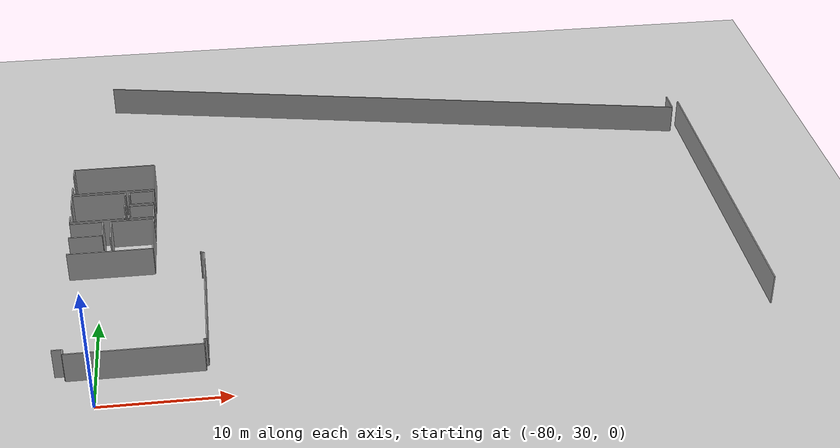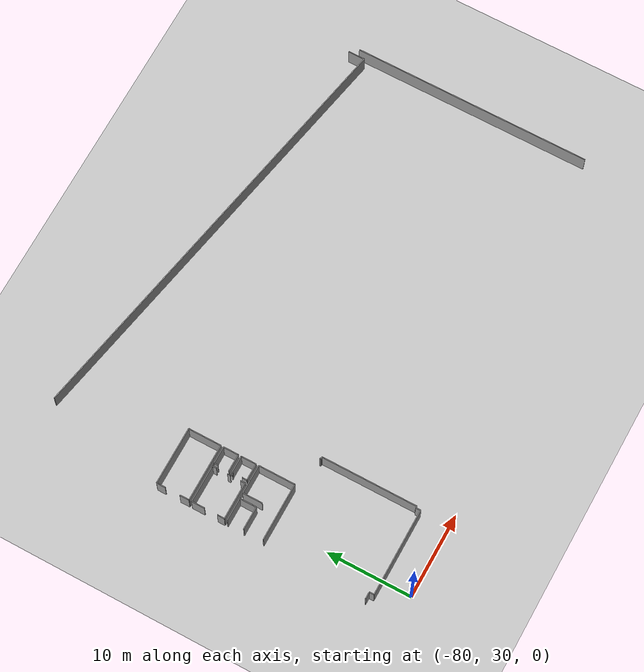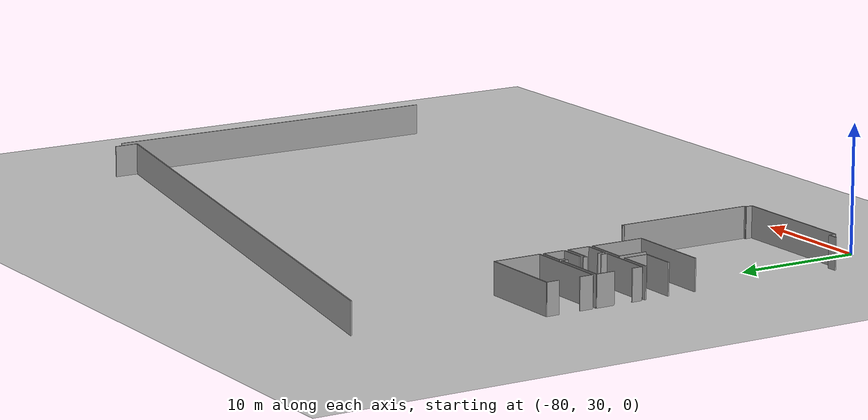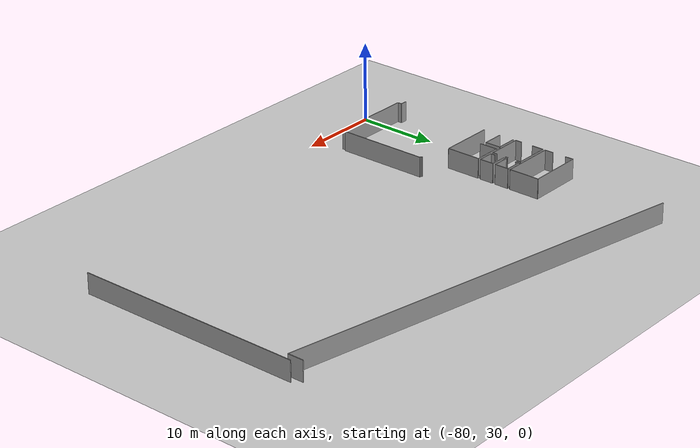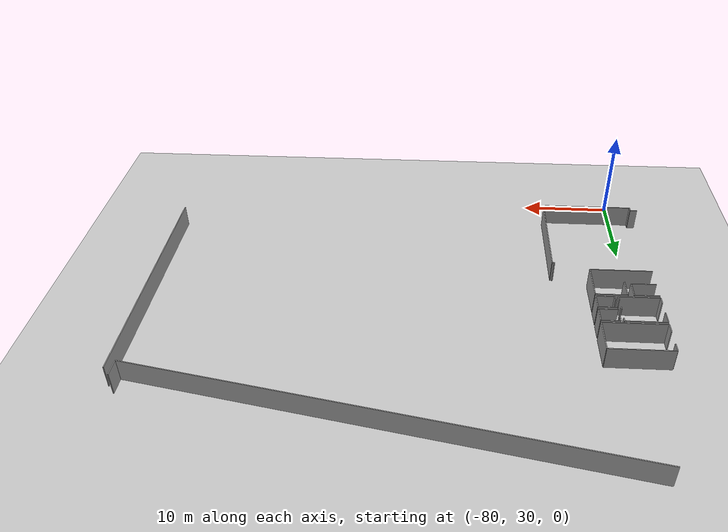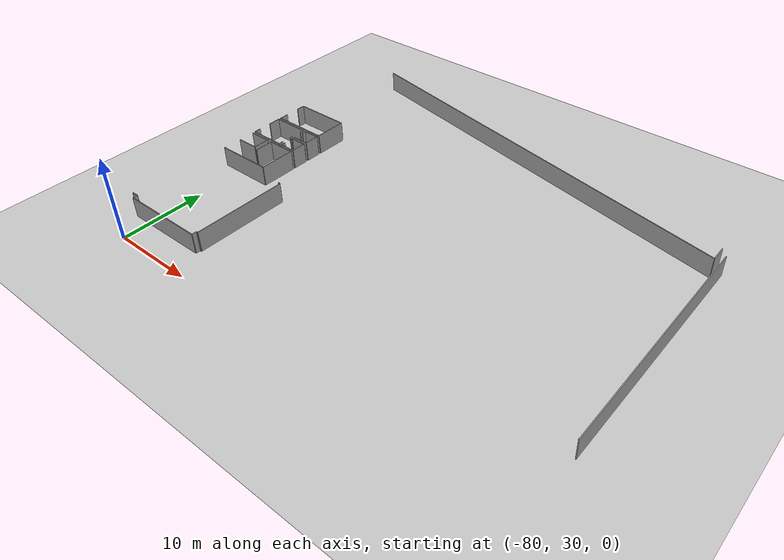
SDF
<sdf version="1.6">
 <world name="default">
  <model name="ground_plane">
   <static>1</static>
   <link name="link">
    <collision name="collision">
     <geometry><plane><normal>0 0 1</normal><size>100 100</size></plane></geometry>
     <surface><friction><ode><mu>100</mu><mu2>50</mu2></ode></friction></surface>
    </collision>
    <visual name="visual">
     <cast_shadows>0</cast_shadows>
     <geometry><plane><normal>0 0 1</normal><size>100 100</size></plane></geometry>
     <material>
      <script><uri>file://media/materials/scripts/gazebo.material</uri><name>Gazebo/Grey</name></script>
     </material>
    </visual>
   </link>
  </model>
  <model name="0510045925_40">
   <static>1</static>
   <link name="Wall_492">
    <collision name="Wall_492_Collision">
     <geometry><box><size>1.94081368493 0.1 2.5</size></box></geometry>
     <pose>0.970406842466 0 1.25 0 0 0</pose>
    </collision>
    <visual name="Wall_492_Visual">
     <pose>0.970406842466 0 1.25 0 0 0</pose>
     <geometry><box><size>1.94081368493 0.1 2.5</size></box></geometry>
     <material>
      <script><uri>file://media/materials/scripts/gazebo.material</uri><name>Gazebo/Grey</name></script>
      <ambient>1 1 1 1</ambient>
     </material>
    </visual>
    <pose>105.108804345 -36.0411410878 0 0 0 -1.57079632679</pose>
   </link>
   <link name="Wall_493">
    <collision name="Wall_493_Collision">
     <geometry><box><size>51.6966576645 0.1 2.5</size></box></geometry>
     <pose>25.8483288323 0 1.25 0 0 0</pose>
    </collision>
    <visual name="Wall_493_Visual">
     <pose>25.8483288323 0 1.25 0 0 0</pose>
     <geometry><box><size>51.6966576645 0.1 2.5</size></box></geometry>
     <material>
      <script><uri>file://media/materials/scripts/gazebo.material</uri><name>Gazebo/Grey</name></script>
      <ambient>1 1 1 1</ambient>
     </material>
    </visual>
    <pose>105.108804345 -37.9819547727 0 0 0 2.94925575427</pose>
   </link>
   <link name="Wall_688">
    <collision name="Wall_688_Collision">
     <geometry><box><size>2.67911981929 0.1 2.5</size></box></geometry>
     <pose>1.33955990965 0 1.25 0 0 0</pose>
    </collision>
    <visual name="Wall_688_Visual">
     <pose>1.33955990965 0 1.25 0 0 0</pose>
     <geometry><box><size>2.67911981929 0.1 2.5</size></box></geometry>
     <material>
      <script><uri>file://media/materials/scripts/gazebo.material</uri><name>Gazebo/Grey</name></script>
      <ambient>1 1 1 1</ambient>
     </material>
    </visual>
    <pose>51.448491155 -50.7052359077 0 0 0 0.0</pose>
   </link>
   <link name="Wall_689">
    <collision name="Wall_689_Collision">
     <geometry><box><size>1.96873175808 0.1 2.5</size></box></geometry>
     <pose>0.984365879039 0 1.25 0 0 0</pose>
    </collision>
    <visual name="Wall_689_Visual">
     <pose>0.984365879039 0 1.25 0 0 0</pose>
     <geometry><box><size>1.96873175808 0.1 2.5</size></box></geometry>
     <material>
      <script><uri>file://media/materials/scripts/gazebo.material</uri><name>Gazebo/Grey</name></script>
      <ambient>1 1 1 1</ambient>
     </material>
    </visual>
    <pose>54.1276109743 -50.7052359077 0 0 0 -1.57079632679</pose>
   </link>
   <link name="Wall_690">
    <collision name="Wall_690_Collision">
     <geometry><box><size>2.68622623791 0.1 2.5</size></box></geometry>
     <pose>1.34311311896 0 1.25 0 0 0</pose>
    </collision>
    <visual name="Wall_690_Visual">
     <pose>1.34311311896 0 1.25 0 0 0</pose>
     <geometry><box><size>2.68622623791 0.1 2.5</size></box></geometry>
     <material>
      <script><uri>file://media/materials/scripts/gazebo.material</uri><name>Gazebo/Grey</name></script>
      <ambient>1 1 1 1</ambient>
     </material>
    </visual>
    <pose>54.1276109743 -52.6739676658 0 0 0 3.14159265359</pose>
   </link>
   <link name="Wall_693">
    <collision name="Wall_693_Collision">
     <geometry><box><size>3.40194411309 0.1 2.5</size></box></geometry>
     <pose>1.70097205655 0 1.25 0 0 0</pose>
    </collision>
    <visual name="Wall_693_Visual">
     <pose>1.70097205655 0 1.25 0 0 0</pose>
     <geometry><box><size>3.40194411309 0.1 2.5</size></box></geometry>
     <material>
      <script><uri>file://media/materials/scripts/gazebo.material</uri><name>Gazebo/Grey</name></script>
      <ambient>1 1 1 1</ambient>
     </material>
    </visual>
    <pose>54.7900307099 -50.6935610771 0 0 0 0.0</pose>
   </link>
   <link name="Wall_694">
    <collision name="Wall_694_Collision">
     <geometry><box><size>4.30928149032 0.1 2.5</size></box></geometry>
     <pose>2.15464074516 0 1.25 0 0 0</pose>
    </collision>
    <visual name="Wall_694_Visual">
     <pose>2.15464074516 0 1.25 0 0 0</pose>
     <geometry><box><size>4.30928149032 0.1 2.5</size></box></geometry>
     <material>
      <script><uri>file://media/materials/scripts/gazebo.material</uri><name>Gazebo/Grey</name></script>
      <ambient>1 1 1 1</ambient>
     </material>
    </visual>
    <pose>58.191974823 -50.6935610771 0 0 0 -1.57079632679</pose>
   </link>
   <link name="Wall_695">
    <collision name="Wall_695_Collision">
     <geometry><box><size>6.78358417299 0.1 2.5</size></box></geometry>
     <pose>3.3917920865 0 1.25 0 0 0</pose>
    </collision>
    <visual name="Wall_695_Visual">
     <pose>3.3917920865 0 1.25 0 0 0</pose>
     <geometry><box><size>6.78358417299 0.1 2.5</size></box></geometry>
     <material>
      <script><uri>file://media/materials/scripts/gazebo.material</uri><name>Gazebo/Grey</name></script>
      <ambient>1 1 1 1</ambient>
     </material>
    </visual>
    <pose>58.191974823 -55.0028425674 0 0 0 3.14159265359</pose>
   </link>
   <link name="Wall_697">
    <collision name="Wall_697_Collision">
     <geometry><box><size>2.3182169548 0.1 2.5</size></box></geometry>
     <pose>1.1591084774 0 1.25 0 0 0</pose>
    </collision>
    <visual name="Wall_697_Visual">
     <pose>1.1591084774 0 1.25 0 0 0</pose>
     <geometry><box><size>2.3182169548 0.1 2.5</size></box></geometry>
     <material>
      <script><uri>file://media/materials/scripts/gazebo.material</uri><name>Gazebo/Grey</name></script>
      <ambient>1 1 1 1</ambient>
     </material>
    </visual>
    <pose>54.7928225172 -53.0117763509 0 0 0 1.57200061787</pose>
   </link>
   <link name="Wall_698">
    <collision name="Wall_698_Collision">
     <geometry><box><size>2.0106088678 0.1 2.5</size></box></geometry>
     <pose>1.0053044339 0 1.25 0 0 0</pose>
    </collision>
    <visual name="Wall_698_Visual">
     <pose>1.0053044339 0 1.25 0 0 0</pose>
     <geometry><box><size>2.0106088678 0.1 2.5</size></box></geometry>
     <material>
      <script><uri>file://media/materials/scripts/gazebo.material</uri><name>Gazebo/Grey</name></script>
      <ambient>1 1 1 1</ambient>
     </material>
    </visual>
    <pose>56.1912641811 -46.459912185 0 0 0 0.0</pose>
   </link>
   <link name="Wall_699">
    <collision name="Wall_699_Collision">
     <geometry><box><size>1.781680668 0.1 2.5</size></box></geometry>
     <pose>0.890840334002 0 1.25 0 0 0</pose>
    </collision>
    <visual name="Wall_699_Visual">
     <pose>0.890840334002 0 1.25 0 0 0</pose>
     <geometry><box><size>1.781680668 0.1 2.5</size></box></geometry>
     <material>
      <script><uri>file://media/materials/scripts/gazebo.material</uri><name>Gazebo/Grey</name></script>
      <ambient>1 1 1 1</ambient>
     </material>
    </visual>
    <pose>58.2018730489 -46.459912185 0 0 0 -1.57079632679</pose>
   </link>
   <link name="Wall_700">
    <collision name="Wall_700_Collision">
     <geometry><box><size>2.02050709373 0.1 2.5</size></box></geometry>
     <pose>1.01025354686 0 1.25 0 0 0</pose>
    </collision>
    <visual name="Wall_700_Visual">
     <pose>1.01025354686 0 1.25 0 0 0</pose>
     <geometry><box><size>2.02050709373 0.1 2.5</size></box></geometry>
     <material>
      <script><uri>file://media/materials/scripts/gazebo.material</uri><name>Gazebo/Grey</name></script>
      <ambient>1 1 1 1</ambient>
     </material>
    </visual>
    <pose>58.2018730489 -48.241592853 0 0 0 3.14159265359</pose>
   </link>
   <link name="Wall_701">
    <collision name="Wall_701_Collision">
     <geometry><box><size>0.474710449044 0.1 2.5</size></box></geometry>
     <pose>0.237355224522 0 1.25 0 0 0</pose>
    </collision>
    <visual name="Wall_701_Visual">
     <pose>0.237355224522 0 1.25 0 0 0</pose>
     <geometry><box><size>0.474710449044 0.1 2.5</size></box></geometry>
     <material>
      <script><uri>file://media/materials/scripts/gazebo.material</uri><name>Gazebo/Grey</name></script>
      <ambient>1 1 1 1</ambient>
     </material>
    </visual>
    <pose>56.1813659552 -46.9345194284 0 0 0 1.5499437348</pose>
   </link>
   <link name="Wall_702">
    <collision name="Wall_702_Collision">
     <geometry><box><size>2.0004568412 0.1 2.5</size></box></geometry>
     <pose>1.0002284206 0 1.25 0 0 0</pose>
    </collision>
    <visual name="Wall_702_Visual">
     <pose>1.0002284206 0 1.25 0 0 0</pose>
     <geometry><box><size>2.0004568412 0.1 2.5</size></box></geometry>
     <material>
      <script><uri>file://media/materials/scripts/gazebo.material</uri><name>Gazebo/Grey</name></script>
      <ambient>1 1 1 1</ambient>
     </material>
    </visual>
    <pose>56.1960863937 -48.5943757773 0 0 0 0.0</pose>
   </link>
   <link name="Wall_703">
    <collision name="Wall_703_Collision">
     <geometry><box><size>1.78447247532 0.1 2.5</size></box></geometry>
     <pose>0.892236237659 0 1.25 0 0 0</pose>
    </collision>
    <visual name="Wall_703_Visual">
     <pose>0.892236237659 0 1.25 0 0 0</pose>
     <geometry><box><size>1.78447247532 0.1 2.5</size></box></geometry>
     <material>
      <script><uri>file://media/materials/scripts/gazebo.material</uri><name>Gazebo/Grey</name></script>
      <ambient>1 1 1 1</ambient>
     </material>
    </visual>
    <pose>58.1965432349 -48.5943757773 0 0 0 -1.57079632679</pose>
   </link>
   <link name="Wall_704">
    <collision name="Wall_704_Collision">
     <geometry><box><size>1.9852288013 0.1 2.5</size></box></geometry>
     <pose>0.99261440065 0 1.25 0 0 0</pose>
    </collision>
    <visual name="Wall_704_Visual">
     <pose>0.99261440065 0 1.25 0 0 0</pose>
     <geometry><box><size>1.9852288013 0.1 2.5</size></box></geometry>
     <material>
      <script><uri>file://media/materials/scripts/gazebo.material</uri><name>Gazebo/Grey</name></script>
      <ambient>1 1 1 1</ambient>
     </material>
    </visual>
    <pose>58.1965432349 -50.3788482526 0 0 0 3.14159265359</pose>
   </link>
   <link name="Wall_705">
    <collision name="Wall_705_Collision">
     <geometry><box><size>0.574858506129 0.1 2.5</size></box></geometry>
     <pose>0.287429253065 0 1.25 0 0 0</pose>
    </collision>
    <visual name="Wall_705_Visual">
     <pose>0.287429253065 0 1.25 0 0 0</pose>
     <geometry><box><size>0.574858506129 0.1 2.5</size></box></geometry>
     <material>
      <script><uri>file://media/materials/scripts/gazebo.material</uri><name>Gazebo/Grey</name></script>
      <ambient>1 1 1 1</ambient>
     </material>
    </visual>
    <pose>56.2113144336 -50.3788482526 0 0 0 1.57079632679</pose>
   </link>
   <link name="Wall_706">
    <collision name="Wall_706_Collision">
     <geometry><box><size>0.10290701551 0.1 2.5</size></box></geometry>
     <pose>0.0514535077551 0 1.25 0 0 0</pose>
    </collision>
    <visual name="Wall_706_Visual">
     <pose>0.0514535077551 0 1.25 0 0 0</pose>
     <geometry><box><size>0.10290701551 0.1 2.5</size></box></geometry>
     <material>
      <script><uri>file://media/materials/scripts/gazebo.material</uri><name>Gazebo/Grey</name></script>
      <ambient>1 1 1 1</ambient>
     </material>
    </visual>
    <pose>56.2113144336 -48.6961498439 0 0 0 1.71932042076</pose>
   </link>
   <link name="Wall_707">
    <collision name="Wall_707_Collision">
     <geometry><box><size>4.38948250044 0.1 2.5</size></box></geometry>
     <pose>2.19474125022 0 1.25 0 0 0</pose>
    </collision>
    <visual name="Wall_707_Visual">
     <pose>2.19474125022 0 1.25 0 0 0</pose>
     <geometry><box><size>4.38948250044 0.1 2.5</size></box></geometry>
     <material>
      <script><uri>file://media/materials/scripts/gazebo.material</uri><name>Gazebo/Grey</name></script>
      <ambient>1 1 1 1</ambient>
     </material>
    </visual>
    <pose>51.4482373544 -46.4687952082 0 0 0 0.0</pose>
   </link>
   <link name="Wall_708">
    <collision name="Wall_708_Collision">
     <geometry><box><size>0.494911296668 0.1 2.5</size></box></geometry>
     <pose>0.247455648334 0 1.25 0 0 0</pose>
    </collision>
    <visual name="Wall_708_Visual">
     <pose>0.247455648334 0 1.25 0 0 0</pose>
     <geometry><box><size>0.494911296668 0.1 2.5</size></box></geometry>
     <material>
      <script><uri>file://media/materials/scripts/gazebo.material</uri><name>Gazebo/Grey</name></script>
      <ambient>1 1 1 1</ambient>
     </material>
    </visual>
    <pose>55.8377198548 -46.4687952082 0 0 0 -1.57079632679</pose>
   </link>
   <link name="Wall_709">
    <collision name="Wall_709_Collision">
     <geometry><box><size>0.351513920966 0.1 2.5</size></box></geometry>
     <pose>0.175756960483 0 1.25 0 0 0</pose>
    </collision>
    <visual name="Wall_709_Visual">
     <pose>0.175756960483 0 1.25 0 0 0</pose>
     <geometry><box><size>0.351513920966 0.1 2.5</size></box></geometry>
     <material>
      <script><uri>file://media/materials/scripts/gazebo.material</uri><name>Gazebo/Grey</name></script>
      <ambient>1 1 1 1</ambient>
     </material>
    </visual>
    <pose>55.8377198548 -48.280170554 0 0 0 -1.57079632679</pose>
   </link>
   <link name="Wall_710">
    <collision name="Wall_710_Collision">
     <geometry><box><size>0.537803609045 0.1 2.5</size></box></geometry>
     <pose>0.268901804523 0 1.25 0 0 0</pose>
    </collision>
    <visual name="Wall_710_Visual">
     <pose>0.268901804523 0 1.25 0 0 0</pose>
     <geometry><box><size>0.537803609045 0.1 2.5</size></box></geometry>
     <material>
      <script><uri>file://media/materials/scripts/gazebo.material</uri><name>Gazebo/Grey</name></script>
      <ambient>1 1 1 1</ambient>
     </material>
    </visual>
    <pose>55.8377198548 -49.8334306236 0 0 0 -1.57079632679</pose>
   </link>
   <link name="Wall_711">
    <collision name="Wall_711_Collision">
     <geometry><box><size>4.38034567651 0.1 2.5</size></box></geometry>
     <pose>2.19017283825 0 1.25 0 0 0</pose>
    </collision>
    <visual name="Wall_711_Visual">
     <pose>2.19017283825 0 1.25 0 0 0</pose>
     <geometry><box><size>4.38034567651 0.1 2.5</size></box></geometry>
     <material>
      <script><uri>file://media/materials/scripts/gazebo.material</uri><name>Gazebo/Grey</name></script>
      <ambient>1 1 1 1</ambient>
     </material>
    </visual>
    <pose>55.8377198548 -50.3712342326 0 0 0 3.14159265359</pose>
   </link>
   <link name="Wall_712">
    <collision name="Wall_712_Collision">
     <geometry><box><size>0.840334001675 0.1 2.5</size></box></geometry>
     <pose>0.420167000838 0 1.25 0 0 0</pose>
    </collision>
    <visual name="Wall_712_Visual">
     <pose>0.420167000838 0 1.25 0 0 0</pose>
     <geometry><box><size>0.840334001675 0.1 2.5</size></box></geometry>
     <material>
      <script><uri>file://media/materials/scripts/gazebo.material</uri><name>Gazebo/Grey</name></script>
      <ambient>1 1 1 1</ambient>
     </material>
    </visual>
    <pose>51.4573741783 -50.3712342326 0 0 0 1.57079632679</pose>
   </link>
   <link name="Wall_713">
    <collision name="Wall_713_Collision">
     <geometry><box><size>1.52105482733 0.1 2.5</size></box></geometry>
     <pose>0.760527413666 0 1.25 0 0 0</pose>
    </collision>
    <visual name="Wall_713_Visual">
     <pose>0.760527413666 0 1.25 0 0 0</pose>
     <geometry><box><size>1.52105482733 0.1 2.5</size></box></geometry>
     <material>
      <script><uri>file://media/materials/scripts/gazebo.material</uri><name>Gazebo/Grey</name></script>
      <ambient>1 1 1 1</ambient>
     </material>
    </visual>
    <pose>51.4573741783 -47.9898225933 0 0 0 1.57680326272</pose>
   </link>
   <link name="Wall_714">
    <collision name="Wall_714_Collision">
     <geometry><box><size>1.09921067993 0.1 2.5</size></box></geometry>
     <pose>0.549605339966 0 1.25 0 0 0</pose>
    </collision>
    <visual name="Wall_714_Visual">
     <pose>0.549605339966 0 1.25 0 0 0</pose>
     <geometry><box><size>1.09921067993 0.1 2.5</size></box></geometry>
     <material>
      <script><uri>file://media/materials/scripts/gazebo.material</uri><name>Gazebo/Grey</name></script>
      <ambient>1 1 1 1</ambient>
     </material>
    </visual>
    <pose>51.448491155 -46.1487525697 0 0 0 1.57079632679</pose>
   </link>
   <link name="Wall_715">
    <collision name="Wall_715_Collision">
     <geometry><box><size>1.039313723 0.1 2.5</size></box></geometry>
     <pose>0.519656861501 0 1.25 0 0 0</pose>
    </collision>
    <visual name="Wall_715_Visual">
     <pose>0.519656861501 0 1.25 0 0 0</pose>
     <geometry><box><size>1.039313723 0.1 2.5</size></box></geometry>
     <material>
      <script><uri>file://media/materials/scripts/gazebo.material</uri><name>Gazebo/Grey</name></script>
      <ambient>1 1 1 1</ambient>
     </material>
    </visual>
    <pose>51.448491155 -43.2957792949 0 0 0 1.57079632679</pose>
   </link>
   <link name="Wall_716">
    <collision name="Wall_716_Collision">
     <geometry><box><size>6.76835613309 0.1 2.5</size></box></geometry>
     <pose>3.38417806655 0 1.25 0 0 0</pose>
    </collision>
    <visual name="Wall_716_Visual">
     <pose>3.38417806655 0 1.25 0 0 0</pose>
     <geometry><box><size>6.76835613309 0.1 2.5</size></box></geometry>
     <material>
      <script><uri>file://media/materials/scripts/gazebo.material</uri><name>Gazebo/Grey</name></script>
      <ambient>1 1 1 1</ambient>
     </material>
    </visual>
    <pose>51.448491155 -42.2564655719 0 0 0 0.0</pose>
   </link>
   <link name="Wall_717">
    <collision name="Wall_717_Collision">
     <geometry><box><size>3.88949519048 0.1 2.5</size></box></geometry>
     <pose>1.94474759524 0 1.25 0 0 0</pose>
    </collision>
    <visual name="Wall_717_Visual">
     <pose>1.94474759524 0 1.25 0 0 0</pose>
     <geometry><box><size>3.88949519048 0.1 2.5</size></box></geometry>
     <material>
      <script><uri>file://media/materials/scripts/gazebo.material</uri><name>Gazebo/Grey</name></script>
      <ambient>1 1 1 1</ambient>
     </material>
    </visual>
    <pose>58.2168472881 -42.2564655719 0 0 0 -1.57079632679</pose>
   </link>
   <link name="Wall_718">
    <collision name="Wall_718_Collision">
     <geometry><box><size>6.76835670887 0.1 2.5</size></box></geometry>
     <pose>3.38417835444 0 1.25 0 0 0</pose>
    </collision>
    <visual name="Wall_718_Visual">
     <pose>3.38417835444 0 1.25 0 0 0</pose>
     <geometry><box><size>6.76835670887 0.1 2.5</size></box></geometry>
     <material>
      <script><uri>file://media/materials/scripts/gazebo.material</uri><name>Gazebo/Grey</name></script>
      <ambient>1 1 1 1</ambient>
     </material>
    </visual>
    <pose>58.2168472881 -46.1459607624 0 0 0 -3.14118017424</pose>
   </link>
   <link name="Wall_776">
    <collision name="Wall_776_Collision">
     <geometry><box><size>0.15101139565 0.1 2.5</size></box></geometry>
     <pose>0.0755056978249 0 1.25 0 0 0</pose>
    </collision>
    <visual name="Wall_776_Visual">
     <pose>0.0755056978249 0 1.25 0 0 0</pose>
     <geometry><box><size>0.15101139565 0.1 2.5</size></box></geometry>
     <material>
      <script><uri>file://media/materials/scripts/gazebo.material</uri><name>Gazebo/Grey</name></script>
      <ambient>1 1 1 1</ambient>
     </material>
    </visual>
    <pose>61.953046877 -55.8992665161 0 0 0 -1.57079632679</pose>
   </link>
   <link name="Wall_777">
    <collision name="Wall_777_Collision">
     <geometry><box><size>0.233242811096 0.1 2.5</size></box></geometry>
     <pose>0.116621405548 0 1.25 0 0 0</pose>
    </collision>
    <visual name="Wall_777_Visual">
     <pose>0.116621405548 0 1.25 0 0 0</pose>
     <geometry><box><size>0.233242811096 0.1 2.5</size></box></geometry>
     <material>
      <script><uri>file://media/materials/scripts/gazebo.material</uri><name>Gazebo/Grey</name></script>
      <ambient>1 1 1 1</ambient>
     </material>
    </visual>
    <pose>61.953046877 -56.0502779117 0 0 0 0.0</pose>
   </link>
   <link name="Wall_778">
    <collision name="Wall_778_Collision">
     <geometry><box><size>11.2149437832 0.1 2.5</size></box></geometry>
     <pose>5.60747189158 0 1.25 0 0 0</pose>
    </collision>
    <visual name="Wall_778_Visual">
     <pose>5.60747189158 0 1.25 0 0 0</pose>
     <geometry><box><size>11.2149437832 0.1 2.5</size></box></geometry>
     <material>
      <script><uri>file://media/materials/scripts/gazebo.material</uri><name>Gazebo/Grey</name></script>
      <ambient>1 1 1 1</ambient>
     </material>
    </visual>
    <pose>62.1862896881 -56.0502779117 0 0 0 -1.57079632679</pose>
   </link>
   <link name="Wall_779">
    <collision name="Wall_779_Collision">
     <geometry><box><size>0.199233521992 0.1 2.5</size></box></geometry>
     <pose>0.0996167609959 0 1.25 0 0 0</pose>
    </collision>
    <visual name="Wall_779_Visual">
     <pose>0.0996167609959 0 1.25 0 0 0</pose>
     <geometry><box><size>0.199233521992 0.1 2.5</size></box></geometry>
     <material>
      <script><uri>file://media/materials/scripts/gazebo.material</uri><name>Gazebo/Grey</name></script>
      <ambient>1 1 1 1</ambient>
     </material>
    </visual>
    <pose>62.1862896881 -67.2652216949 0 0 0 3.14159265359</pose>
   </link>
   <link name="Wall_780">
    <collision name="Wall_780_Collision">
     <geometry><box><size>0.564452678866 0.1 2.5</size></box></geometry>
     <pose>0.282226339433 0 1.25 0 0 0</pose>
    </collision>
    <visual name="Wall_780_Visual">
     <pose>0.282226339433 0 1.25 0 0 0</pose>
     <geometry><box><size>0.564452678866 0.1 2.5</size></box></geometry>
     <material>
      <script><uri>file://media/materials/scripts/gazebo.material</uri><name>Gazebo/Grey</name></script>
      <ambient>1 1 1 1</ambient>
     </material>
    </visual>
    <pose>61.9870561661 -67.2652216949 0 0 0 -1.57079632679</pose>
   </link>
   <link name="Wall_781">
    <collision name="Wall_781_Collision">
     <geometry><box><size>10.2345118144 0.1 2.5</size></box></geometry>
     <pose>5.11725590721 0 1.25 0 0 0</pose>
    </collision>
    <visual name="Wall_781_Visual">
     <pose>5.11725590721 0 1.25 0 0 0</pose>
     <geometry><box><size>10.2345118144 0.1 2.5</size></box></geometry>
     <material>
      <script><uri>file://media/materials/scripts/gazebo.material</uri><name>Gazebo/Grey</name></script>
      <ambient>1 1 1 1</ambient>
     </material>
    </visual>
    <pose>61.9870561661 -67.8296743737 0 0 0 3.14159265359</pose>
   </link>
   <link name="Wall_782">
    <collision name="Wall_782_Collision">
     <geometry><box><size>0.554554452933 0.1 2.5</size></box></geometry>
     <pose>0.277277226466 0 1.25 0 0 0</pose>
    </collision>
    <visual name="Wall_782_Visual">
     <pose>0.277277226466 0 1.25 0 0 0</pose>
     <geometry><box><size>0.554554452933 0.1 2.5</size></box></geometry>
     <material>
      <script><uri>file://media/materials/scripts/gazebo.material</uri><name>Gazebo/Grey</name></script>
      <ambient>1 1 1 1</ambient>
     </material>
    </visual>
    <pose>51.7525443517 -67.8296743737 0 0 0 1.57079632679</pose>
   </link>
   <link name="Wall_783">
    <collision name="Wall_783_Collision">
     <geometry><box><size>0.8119083272 0.1 2.5</size></box></geometry>
     <pose>0.4059541636 0 1.25 0 0 0</pose>
    </collision>
    <visual name="Wall_783_Visual">
     <pose>0.4059541636 0 1.25 0 0 0</pose>
     <geometry><box><size>0.8119083272 0.1 2.5</size></box></geometry>
     <material>
      <script><uri>file://media/materials/scripts/gazebo.material</uri><name>Gazebo/Grey</name></script>
      <ambient>1 1 1 1</ambient>
     </material>
    </visual>
    <pose>51.7525443517 -67.2751199208 0 0 0 3.14159265359</pose>
   </link>
   <link name="Wall_786">
    <collision name="Wall_786_Collision">
     <geometry><box><size>28.0475114845 0.1 2.5</size></box></geometry>
     <pose>14.0237557422 0 1.25 0 0 0</pose>
    </collision>
    <visual name="Wall_786_Visual">
     <pose>14.0237557422 0 1.25 0 0 0</pose>
     <geometry><box><size>28.0475114845 0.1 2.5</size></box></geometry>
     <material>
      <script><uri>file://media/materials/scripts/gazebo.material</uri><name>Gazebo/Grey</name></script>
      <ambient>1 1 1 1</ambient>
     </material>
    </visual>
    <pose>105.88543438 -65.0119793914 0 0 0 1.57079632679</pose>
   </link>
   <pose>-133.95 101.083118449 0 0 0 0</pose>
  </model>
 </world>
</sdf>
